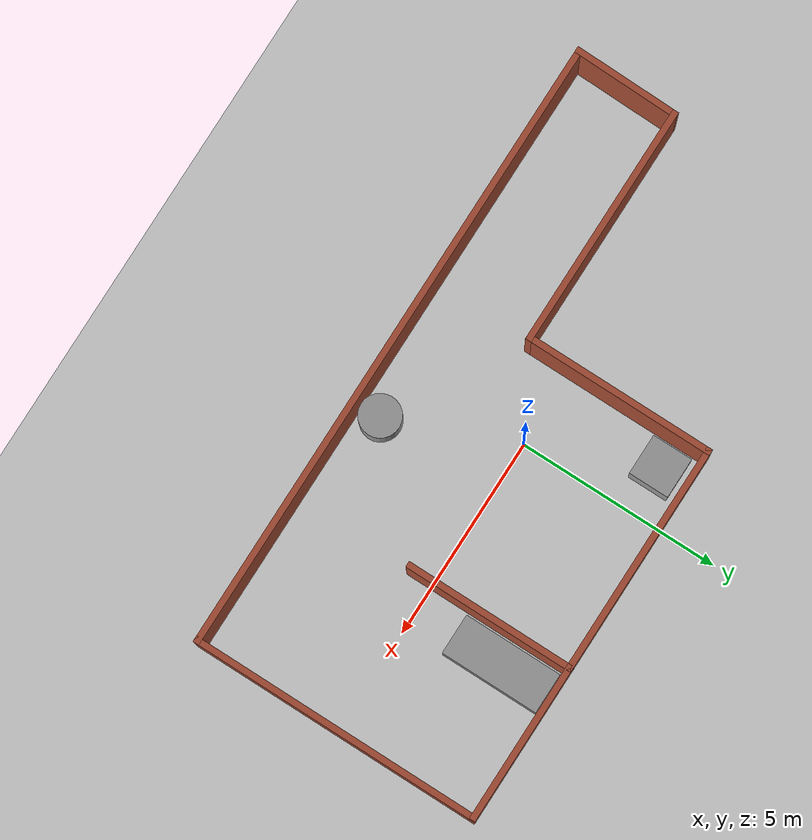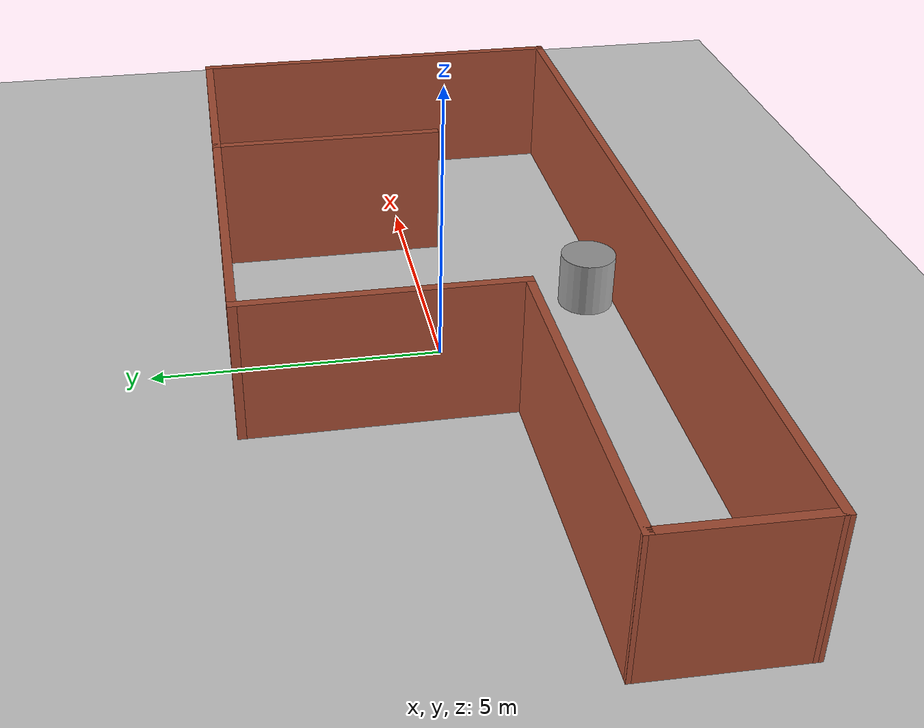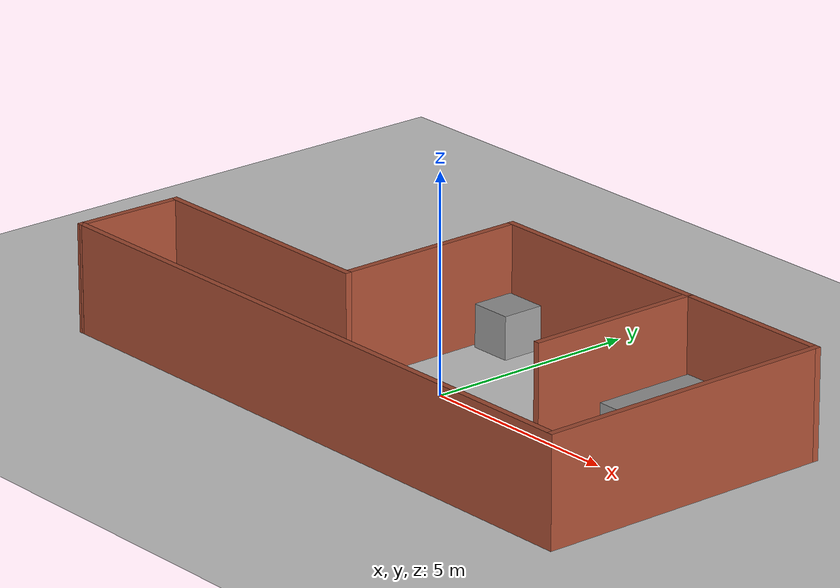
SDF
<sdf version="1.6">
 <world name="default">
  <light name="sun" type="directional">
   <pose>0 0 10 0 -0 0</pose>
   <diffuse>0.8 0.8 0.8 1</diffuse>
   <specular>0.1 0.1 0.1 1</specular>
   <attenuation>
    <range>1000</range>
    <constant>0.9</constant>
    <linear>0.01</linear>
    <quadratic>0.001</quadratic>
   </attenuation>
   <direction>-0.5 0.5 -1</direction>
  </light>
  <model name="ground_plane">
   <static>1</static>
   <link name="link">
    <collision name="collision">
     <geometry><plane><normal>0 0 1</normal><size>100 100</size></plane></geometry>
     <surface><friction><ode><mu>100</mu><mu2>50</mu2></ode></friction></surface>
    </collision>
    <visual name="visual">
     <cast_shadows>0</cast_shadows>
     <geometry><plane><normal>0 0 1</normal><size>100 100</size></plane></geometry>
     <material>
      <script><uri>file://media/materials/scripts/gazebo.material</uri><name>Gazebo/Grey</name></script>
     </material>
    </visual>
   </link>
  </model>
  <gravity>0 0 -9.8</gravity>
  <magnetic_field>6e-06 2.3e-05 -4.2e-05</magnetic_field>
  <atmosphere type="adiabatic"/>
  <physics name="default_physics" default="0" type="ode">
   <max_step_size>0.001</max_step_size>
   <real_time_factor>1</real_time_factor>
   <real_time_update_rate>1000</real_time_update_rate>
  </physics>
  <scene><ambient>0.4 0.4 0.4 1</ambient><background>0.7 0.7 0.7 1</background><shadows>1</shadows></scene>
  <spherical_coordinates>
   <surface_model>EARTH_WGS84</surface_model>
   <latitude_deg>0</latitude_deg>
   <longitude_deg>0</longitude_deg>
   <elevation>0</elevation>
   <heading_deg>0</heading_deg>
  </spherical_coordinates>
  <model name="bigroom">
   <pose>-0.064387 0.007892 0 0 -0 0</pose>
   <link name="Wall_0">
    <collision name="Wall_0_Collision">
     <geometry><box><size>15.5 0.15 2.5</size></box></geometry>
     <pose>0 0 1.25 0 -0 0</pose>
    </collision>
    <visual name="Wall_0_Visual">
     <pose>0 0 1.25 0 -0 0</pose>
     <geometry><box><size>15.5 0.15 2.5</size></box></geometry>
     <material>
      <script><uri>file://media/materials/scripts/gazebo.material</uri><name>Gazebo/Bricks</name></script>
      <ambient>1 1 1 1</ambient>
     </material>
    </visual>
    <pose>0.000742 -3.54926 0 0 -0 3.14159</pose>
   </link>
   <link name="Wall_13">
    <collision name="Wall_13_Collision">
     <geometry><box><size>4.75 0.15 2.5</size></box></geometry>
     <pose>0 0 1.25 0 -0 0</pose>
    </collision>
    <visual name="Wall_13_Visual">
     <pose>0 0 1.25 0 -0 0</pose>
     <geometry><box><size>4.75 0.15 2.5</size></box></geometry>
     <material>
      <script><uri>file://media/materials/scripts/gazebo.material</uri><name>Gazebo/Bricks</name></script>
      <ambient>1 1 1 1</ambient>
     </material>
    </visual>
    <pose>-1.77426 1.25074 0 0 0 -1.5708</pose>
   </link>
   <link name="Wall_14">
    <collision name="Wall_14_Collision">
     <geometry><box><size>6 0.15 2.5</size></box></geometry>
     <pose>0 0 1.25 0 -0 0</pose>
    </collision>
    <visual name="Wall_14_Visual">
     <pose>0 0 1.25 0 -0 0</pose>
     <geometry><box><size>6 0.15 2.5</size></box></geometry>
     <material>
      <script><uri>file://media/materials/scripts/gazebo.material</uri><name>Gazebo/Bricks</name></script>
      <ambient>1 1 1 1</ambient>
     </material>
    </visual>
    <pose>-4.69926 -1.04926 0 0 -0 3.14159</pose>
   </link>
   <link name="Wall_15">
    <collision name="Wall_15_Collision">
     <geometry><box><size>2.6505 0.15 2.5</size></box></geometry>
     <pose>0 0 1.25 0 -0 0</pose>
    </collision>
    <visual name="Wall_15_Visual">
     <pose>0 0 1.25 0 -0 0</pose>
     <geometry><box><size>2.6505 0.15 2.5</size></box></geometry>
     <material>
      <script><uri>file://media/materials/scripts/gazebo.material</uri><name>Gazebo/Bricks</name></script>
      <ambient>1 1 1 1</ambient>
     </material>
    </visual>
    <pose>-7.64926 -2.29926 0 0 0 -1.59079</pose>
   </link>
   <link name="Wall_2">
    <collision name="Wall_2_Collision">
     <geometry><box><size>7.25 0.15 2.5</size></box></geometry>
     <pose>0 0 1.25 0 -0 0</pose>
    </collision>
    <visual name="Wall_2_Visual">
     <pose>0 0 1.25 0 -0 0</pose>
     <geometry><box><size>7.25 0.15 2.5</size></box></geometry>
     <material>
      <script><uri>file://media/materials/scripts/gazebo.material</uri><name>Gazebo/Bricks</name></script>
      <ambient>1 1 1 1</ambient>
     </material>
    </visual>
    <pose>7.67574 0.000742 0 0 -0 1.5708</pose>
   </link>
   <link name="Wall_4">
    <collision name="Wall_4_Collision">
     <geometry><box><size>4 0.15 2.5</size></box></geometry>
     <pose>0 0 1.25 0 -0 0</pose>
    </collision>
    <visual name="Wall_4_Visual">
     <pose>0 0 1.25 0 -0 0</pose>
     <geometry><box><size>4 0.15 2.5</size></box></geometry>
     <material>
      <script><uri>file://media/materials/scripts/gazebo.material</uri><name>Gazebo/Bricks</name></script>
      <ambient>1 1 1 1</ambient>
     </material>
    </visual>
    <pose>5.75074 3.55074 0 0 -0 3.14159</pose>
   </link>
   <link name="Wall_5">
    <collision name="Wall_5_Collision">
     <geometry><box><size>4.25 0.15 2.5</size></box></geometry>
     <pose>0 0 1.25 0 -0 0</pose>
    </collision>
    <visual name="Wall_5_Visual">
     <pose>0 0 1.25 0 -0 0</pose>
     <geometry><box><size>4.25 0.15 2.5</size></box></geometry>
     <material>
      <script><uri>file://media/materials/scripts/gazebo.material</uri><name>Gazebo/Bricks</name></script>
      <ambient>1 1 1 1</ambient>
     </material>
    </visual>
    <pose>3.82574 1.50074 0 0 0 -1.5708</pose>
   </link>
   <link name="Wall_7">
    <collision name="Wall_7_Collision">
     <geometry><box><size>5.75 0.15 2.5</size></box></geometry>
     <pose>0 0 1.25 0 -0 0</pose>
    </collision>
    <visual name="Wall_7_Visual">
     <pose>0 0 1.25 0 -0 0</pose>
     <geometry><box><size>5.75 0.15 2.5</size></box></geometry>
     <material>
      <script><uri>file://media/materials/scripts/gazebo.material</uri><name>Gazebo/Bricks</name></script>
      <ambient>1 1 1 1</ambient>
     </material>
    </visual>
    <pose>1.02574 3.55074 0 0 -0 3.14159</pose>
   </link>
   <static>1</static>
  </model>
  <model name="unit_box_0">
   <pose>-1.13958 2.83941 0.499995 -1e-05 0 0</pose>
   <link name="link">
    <inertial>
     <mass>1</mass>
     <inertia>
      <ixx>0.166667</ixx>
      <ixy>0</ixy>
      <ixz>0</ixz>
      <iyy>0.166667</iyy>
      <iyz>0</iyz>
      <izz>0.166667</izz>
     </inertia>
    </inertial>
    <collision name="collision"><geometry><box><size>1 1 1</size></box></geometry></collision>
    <visual name="visual">
     <geometry><box><size>1 1 1</size></box></geometry>
     <material>
      <script><name>Gazebo/Grey</name><uri>file://media/materials/scripts/gazebo.material</uri></script>
     </material>
    </visual>
   </link>
  </model>
  <model name="unit_box_1">
   <pose>4.41453 2.22832 0.397519 0 1e-05 0</pose>
   <link name="link">
    <inertial>
     <mass>1</mass>
     <inertia>
      <ixx>0.166667</ixx>
      <ixy>0</ixy>
      <ixz>0</ixz>
      <iyy>0.166667</iyy>
      <iyz>0</iyz>
      <izz>0.166667</izz>
     </inertia>
    </inertial>
    <collision name="collision"><geometry><box><size>1 2.44325 0.795047</size></box></geometry></collision>
    <visual name="visual">
     <geometry><box><size>1 2.44325 0.795047</size></box></geometry>
     <material>
      <script><name>Gazebo/Grey</name><uri>file://media/materials/scripts/gazebo.material</uri></script>
     </material>
    </visual>
   </link>
  </model>
  <model name="unit_cylinder_0">
   <pose>1.25572 -2.96636 0.49999 0 -0 0</pose>
   <link name="link">
    <inertial>
     <mass>1</mass>
     <inertia><ixx>0.145833</ixx><ixy>0</ixy><ixz>0</ixz><iyy>0.145833</iyy><iyz>0</iyz><izz>0.125</izz></inertia>
    </inertial>
    <collision name="collision">
     <geometry><cylinder><radius>0.5</radius><length>1</length></cylinder></geometry>
    </collision>
    <visual name="visual">
     <geometry><cylinder><radius>0.5</radius><length>1</length></cylinder></geometry>
     <material>
      <script><name>Gazebo/Grey</name><uri>file://media/materials/scripts/gazebo.material</uri></script>
     </material>
    </visual>
   </link>
  </model>
 </world>
</sdf>
